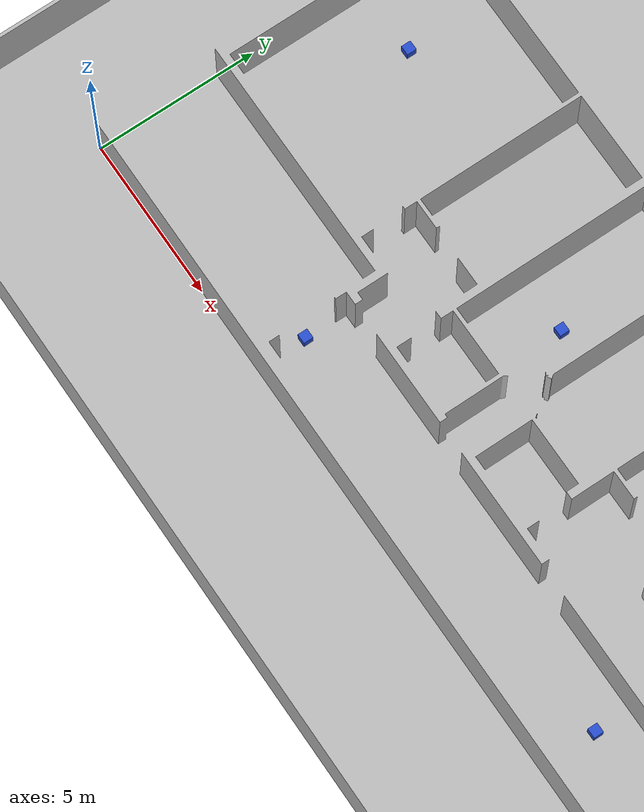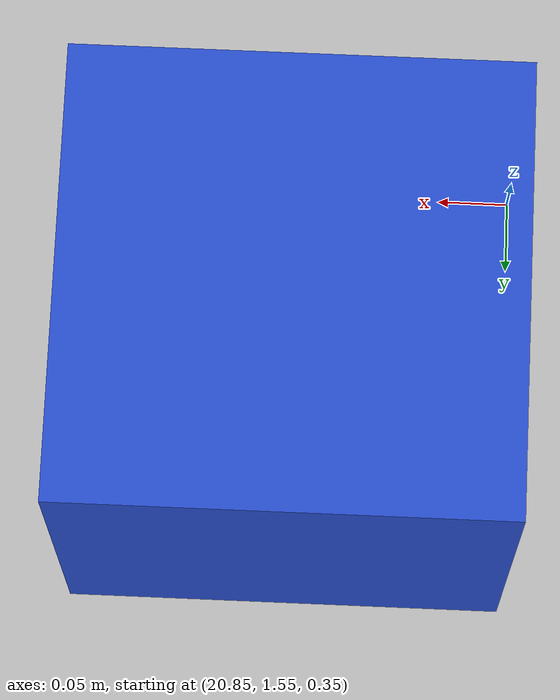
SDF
<?xml version="1.0" ?>
<sdf version="1.4">
  <world name="default">
    <!-- Initial Camera Position -->
    <gui>
      <camera name="camera_default">
        <pose>
          -4.0 2.0 8.0 0.0 0.7 0.0
        </pose>
      </camera>
    </gui>
    <!-- A global light source -->
    <include>
      <uri>model://sun</uri>
    </include>
    <!-- Own physics settings to speed up simulation -->
    <physics type='ode'>
      <max_step_size>0.01</max_step_size>
      <real_time_factor>1</real_time_factor>
      <real_time_update_rate>100</real_time_update_rate>
      <gravity>0 0 -9.8</gravity>
    </physics>
    <include>
      <uri>model://distributed_systems_department</uri>
    </include>
	<model name="box_1">
		<pose frame="">7.8 1.5 0.5 0 -0 0</pose>
		<include>
			<uri>model://box</uri>
		</include>
	</model>
	<model name="box_2">
		<pose frame="">2.5 8.5 0.5 0 -0 0</pose>
		<include>
			<uri>model://box</uri>
		</include>
	</model>
	<model name="box_3">
		<pose frame="">11.5 7.3 0.5 0 -0 0</pose>
		<include>
			<uri>model://box</uri>
		</include>
	</model>
	<model name="box_4">
		<pose frame="">21.0 1.7 0.5 0 -0 0</pose>
		<include>
			<uri>model://box</uri>
		</include>
	</model>
  </world>
</sdf>

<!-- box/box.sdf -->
<sdf version="1.4">
  <model name='box'>
    <link name='link'>
      <visual name='visual'>
        <geometry>
          <box>
            <size>0.3 0.3 0.3</size>
	  </box>
	</geometry>
	<material>
          <script>
            <name>Gazebo/Blue</name>
            <uri>file://media/materials/scripts/gazebo.material</uri>
	  </script>
        </material>
      </visual>
      <collision name='collision'>
        <geometry>
          <box>
            <size>0.3 0.3 0.3</size>
	  </box>
	</geometry>
      </collision>
      <self_collide>0</self_collide>
      <kinematic>0</kinematic>
      <gravity>1</gravity>
    </link>
  </model>
</sdf>

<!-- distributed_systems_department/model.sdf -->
<sdf version="1.4">
  <model name="distributed_systems_department">
    <static>true</static>
    <link name="link">
      <pose>0 0 0 0 0 0</pose>
      <collision name="coll">
        <geometry>
          <mesh>
            <uri>model://distributed_systems_department/meshes/floorplan.stl</uri>
            <scale>0.0254 0.0254 0.0254</scale>
          </mesh>
        </geometry>
        <surface>
          <friction>
            <ode>
              <mu>100</mu>
              <mu2>50</mu2>
            </ode>
          </friction>
        </surface>
      </collision>
      <visual name="visual">
        <geometry>
          <mesh>
            <uri>model://distributed_systems_department/meshes/floorplan.stl</uri>
            <scale>0.0254 0.0254 0.0254</scale>
          </mesh>
        </geometry>
      </visual>
    </link>
  </model>
</sdf>
